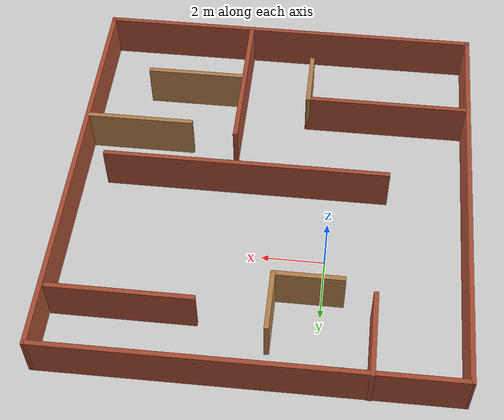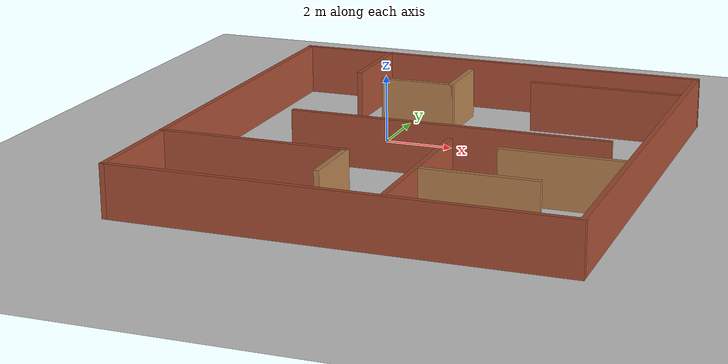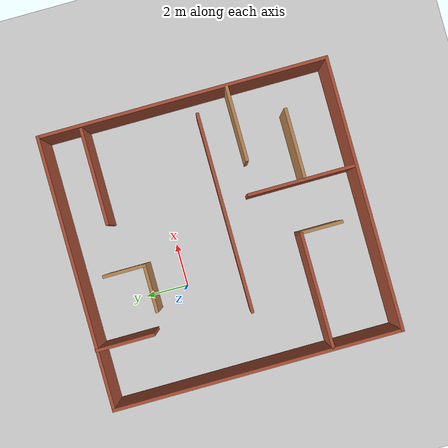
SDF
<sdf version="1.7">
 <world name="default">
  <light name="sun" type="directional">
   <pose>0 0 10 0 -0 0</pose>
   <diffuse>0.8 0.8 0.8 1</diffuse>
   <specular>0.2 0.2 0.2 1</specular>
   <attenuation>
    <range>1000</range>
    <constant>0.9</constant>
    <linear>0.01</linear>
    <quadratic>0.001</quadratic>
   </attenuation>
   <direction>-0.5 0.1 -0.9</direction>
   <spot><inner_angle>0</inner_angle><outer_angle>0</outer_angle><falloff>0</falloff></spot>
  </light>
  <model name="ground_plane">
   <static>1</static>
   <link name="link">
    <collision name="collision">
     <geometry><plane><normal>0 0 1</normal><size>100 100</size></plane></geometry>
     <surface>
      <contact><collide_bitmask>65535</collide_bitmask></contact>
      <friction><ode><mu>100</mu><mu2>50</mu2></ode></friction>
     </surface>
    </collision>
    <visual name="visual">
     <cast_shadows>0</cast_shadows>
     <geometry><plane><normal>0 0 1</normal><size>100 100</size></plane></geometry>
     <material>
      <script><uri>file://media/materials/scripts/gazebo.material</uri><name>Gazebo/Grey</name></script>
     </material>
    </visual>
   </link>
  </model>
  <gravity>0 0 -9.8</gravity>
  <magnetic_field>6e-06 2.3e-05 -4.2e-05</magnetic_field>
  <atmosphere type="adiabatic"/>
  <physics type="ode">
   <max_step_size>0.001</max_step_size>
   <real_time_factor>1</real_time_factor>
   <real_time_update_rate>1000</real_time_update_rate>
  </physics>
  <scene><ambient>0.4 0.4 0.4 1</ambient><background>0.7 0.7 0.7 1</background><shadows>1</shadows></scene>
  <audio><device>default</device></audio>
  <spherical_coordinates>
   <surface_model>EARTH_WGS84</surface_model>
   <latitude_deg>0</latitude_deg>
   <longitude_deg>0</longitude_deg>
   <elevation>0</elevation>
   <heading_deg>0</heading_deg>
  </spherical_coordinates>
  <model name="world_project2">
   <pose>1.952 -2.12288 0 0 -0 0</pose>
   <link name="Wall_0">
    <collision name="Wall_0_Collision">
     <geometry><box><size>12.7501 0.15 1.5</size></box></geometry>
     <pose>0 0 0.75 0 -0 0</pose>
    </collision>
    <visual name="Wall_0_Visual">
     <pose>0 0 0.75 0 -0 0</pose>
     <geometry><box><size>12.7501 0.15 1.5</size></box></geometry>
     <material>
      <script><uri>file://media/materials/scripts/gazebo.material</uri><name>Gazebo/Bricks</name></script>
      <ambient>1 1 1 1</ambient>
     </material>
     <meta><layer>0</layer></meta>
    </visual>
    <pose>-0 6.65438 0 0 -0 0.003254</pose>
   </link>
   <link name="Wall_1">
    <collision name="Wall_1_Collision">
     <geometry><box><size>13.5 0.15 1.5</size></box></geometry>
     <pose>0 0 0.75 0 -0 0</pose>
    </collision>
    <visual name="Wall_1_Visual">
     <pose>0 0 0.75 0 -0 0</pose>
     <geometry><box><size>13.5 0.15 1.5</size></box></geometry>
     <material>
      <script><uri>file://media/materials/scripts/gazebo.material</uri><name>Gazebo/Bricks</name></script>
      <ambient>1 1 1 1</ambient>
     </material>
     <meta><layer>0</layer></meta>
    </visual>
    <pose>6.3 -0.000121 0 0 -0 -1.5708</pose>
   </link>
   <link name="Wall_10">
    <collision name="Wall_10_Collision">
     <geometry><box><size>5 0.15 1.5</size></box></geometry>
     <pose>0 0 0.75 0 -0 0</pose>
    </collision>
    <visual name="Wall_10_Visual">
     <pose>0 0 0.75 0 -0 0</pose>
     <geometry><box><size>5 0.15 1.5</size></box></geometry>
     <material>
      <script><uri>file://media/materials/scripts/gazebo.material</uri><name>Gazebo/Bricks</name></script>
      <ambient>1 1 1 1</ambient>
     </material>
     <meta><layer>0</layer></meta>
    </visual>
    <pose>1.312 -4.13812 0 0 -0 -1.5708</pose>
   </link>
   <link name="Wall_12">
    <collision name="Wall_12_Collision">
     <geometry><box><size>3.25 0.15 1.5</size></box></geometry>
     <pose>0 0 0.75 0 -0 0</pose>
    </collision>
    <visual name="Wall_12_Visual">
     <pose>0 0 0.75 0 -0 0</pose>
     <geometry><box><size>3.25 0.15 1.5</size></box></geometry>
     <material>
      <script><uri>file://media/materials/scripts/gazebo.material</uri><name>Gazebo/Wood</name></script>
      <ambient>1 1 1 1</ambient>
     </material>
     <meta><layer>0</layer></meta>
    </visual>
    <pose>2.983 -4.30212 0 0 -0 0</pose>
   </link>
   <link name="Wall_14">
    <collision name="Wall_14_Collision">
     <geometry><box><size>3.5 0.15 1.5</size></box></geometry>
     <pose>0 0 0.75 0 -0 0</pose>
    </collision>
    <visual name="Wall_14_Visual">
     <pose>0 0 0.75 0 -0 0</pose>
     <geometry><box><size>3.5 0.15 1.5</size></box></geometry>
     <material>
      <script><uri>file://media/materials/scripts/gazebo.material</uri><name>Gazebo/Wood</name></script>
      <ambient>1 1 1 1</ambient>
     </material>
     <meta><layer>0</layer></meta>
    </visual>
    <pose>4.532 -2.03712 0 0 -0 3.14159</pose>
   </link>
   <link name="Wall_16">
    <collision name="Wall_16_Collision">
     <geometry><box><size>9.25 0.15 1.5</size></box></geometry>
     <pose>0 0 0.75 0 -0 0</pose>
    </collision>
    <visual name="Wall_16_Visual">
     <pose>0 0 0.75 0 -0 0</pose>
     <geometry><box><size>9.25 0.15 1.5</size></box></geometry>
     <material>
      <script><uri>file://media/materials/scripts/gazebo.material</uri><name>Gazebo/Bricks</name></script>
      <ambient>1 1 1 1</ambient>
     </material>
     <meta><layer>0</layer></meta>
    </visual>
    <pose>0.827 -0.459121 0 0 -0 0</pose>
   </link>
   <link name="Wall_18">
    <collision name="Wall_18_Collision">
     <geometry><box><size>4.5 0.15 1.5</size></box></geometry>
     <pose>0 0 0.75 0 -0 0</pose>
    </collision>
    <visual name="Wall_18_Visual">
     <pose>0 0 0.75 0 -0 0</pose>
     <geometry><box><size>4.5 0.15 1.5</size></box></geometry>
     <material>
      <script><uri>file://media/materials/scripts/gazebo.material</uri><name>Gazebo/Bricks</name></script>
      <ambient>1 1 1 1</ambient>
     </material>
     <meta><layer>0</layer></meta>
    </visual>
    <pose>3.951 4.71988 0 0 -0 3.14159</pose>
   </link>
   <link name="Wall_2">
    <collision name="Wall_2_Collision">
     <geometry><box><size>12.75 0.15 1.5</size></box></geometry>
     <pose>0 0 0.75 0 -0 0</pose>
    </collision>
    <visual name="Wall_2_Visual">
     <pose>0 0 0.75 0 -0 0</pose>
     <geometry><box><size>12.75 0.15 1.5</size></box></geometry>
     <material>
      <script><uri>file://media/materials/scripts/gazebo.material</uri><name>Gazebo/Bricks</name></script>
      <ambient>1 1 1 1</ambient>
     </material>
     <meta><layer>0</layer></meta>
    </visual>
    <pose>-0 -6.67512 0 0 -0 3.14159</pose>
   </link>
   <link name="Wall_20">
    <collision name="Wall_20_Collision">
     <geometry><box><size>2 0.15 1.5</size></box></geometry>
     <pose>0 0 0.75 0 -0 0</pose>
    </collision>
    <visual name="Wall_20_Visual">
     <pose>0 0 0.75 0 -0 0</pose>
     <geometry><box><size>2 0.15 1.5</size></box></geometry>
     <material>
      <script><uri>file://media/materials/scripts/gazebo.material</uri><name>Gazebo/Wood</name></script>
      <ambient>1 1 1 1</ambient>
     </material>
     <meta><layer>0</layer></meta>
    </visual>
    <pose>-0.465 4.54688 0 0 -0 -1.5708</pose>
   </link>
   <link name="Wall_21">
    <collision name="Wall_21_Collision">
     <geometry><box><size>2.25 0.15 1.5</size></box></geometry>
     <pose>0 0 0.75 0 -0 0</pose>
    </collision>
    <visual name="Wall_21_Visual">
     <pose>0 0 0.75 0 -0 0</pose>
     <geometry><box><size>2.25 0.15 1.5</size></box></geometry>
     <material>
      <script><uri>file://media/materials/scripts/gazebo.material</uri><name>Gazebo/Wood</name></script>
      <ambient>1 1 1 1</ambient>
     </material>
     <meta><layer>0</layer></meta>
    </visual>
    <pose>-1.515 3.62188 0 0 -0 3.14159</pose>
   </link>
   <link name="Wall_3">
    <collision name="Wall_3_Collision">
     <geometry><box><size>13.459 0.15 1.5</size></box></geometry>
     <pose>0 0 0.75 0 -0 0</pose>
    </collision>
    <visual name="Wall_3_Visual">
     <pose>0 0 0.75 0 -0 0</pose>
     <geometry><box><size>13.459 0.15 1.5</size></box></geometry>
     <material>
      <script><uri>file://media/materials/scripts/gazebo.material</uri><name>Gazebo/Bricks</name></script>
      <ambient>1 1 1 1</ambient>
     </material>
     <meta><layer>0</layer></meta>
    </visual>
    <pose>-6.3 -0.020621 0 0 -0 1.5708</pose>
   </link>
   <link name="Wall_5">
    <collision name="Wall_5_Collision">
     <geometry><box><size>5.5 0.15 1.5</size></box></geometry>
     <pose>0 0 0.75 0 -0 0</pose>
    </collision>
    <visual name="Wall_5_Visual">
     <pose>0 0 0.75 0 -0 0</pose>
     <geometry><box><size>5.5 0.15 1.5</size></box></geometry>
     <material>
      <script><uri>file://media/materials/scripts/gazebo.material</uri><name>Gazebo/Bricks</name></script>
      <ambient>1 1 1 1</ambient>
     </material>
     <meta><layer>0</layer></meta>
    </visual>
    <pose>-3.619 -3.49312 0 0 -0 0</pose>
   </link>
   <link name="Wall_6">
    <collision name="Wall_6_Collision">
     <geometry><box><size>2 0.15 1.5</size></box></geometry>
     <pose>0 0 0.75 0 -0 0</pose>
    </collision>
    <visual name="Wall_6_Visual">
     <pose>0 0 0.75 0 -0 0</pose>
     <geometry><box><size>2 0.15 1.5</size></box></geometry>
     <material>
      <script><uri>file://media/materials/scripts/gazebo.material</uri><name>Gazebo/Wood</name></script>
      <ambient>1 1 1 1</ambient>
     </material>
     <meta><layer>0</layer></meta>
    </visual>
    <pose>-0.944 -4.41812 0 0 -0 -1.5708</pose>
   </link>
   <link name="Wall_8">
    <collision name="Wall_8_Collision">
     <geometry><box><size>2.75 0.15 1.5</size></box></geometry>
     <pose>0 0 0.75 0 -0 0</pose>
    </collision>
    <visual name="Wall_8_Visual">
     <pose>0 0 0.75 0 -0 0</pose>
     <geometry><box><size>2.75 0.15 1.5</size></box></geometry>
     <material>
      <script><uri>file://media/materials/scripts/gazebo.material</uri><name>Gazebo/Bricks</name></script>
      <ambient>1 1 1 1</ambient>
     </material>
     <meta><layer>0</layer></meta>
    </visual>
    <pose>-3.543 5.36088 0 0 -0 -1.5708</pose>
   </link>
   <static>1</static>
  </model>
 </world>
</sdf>
